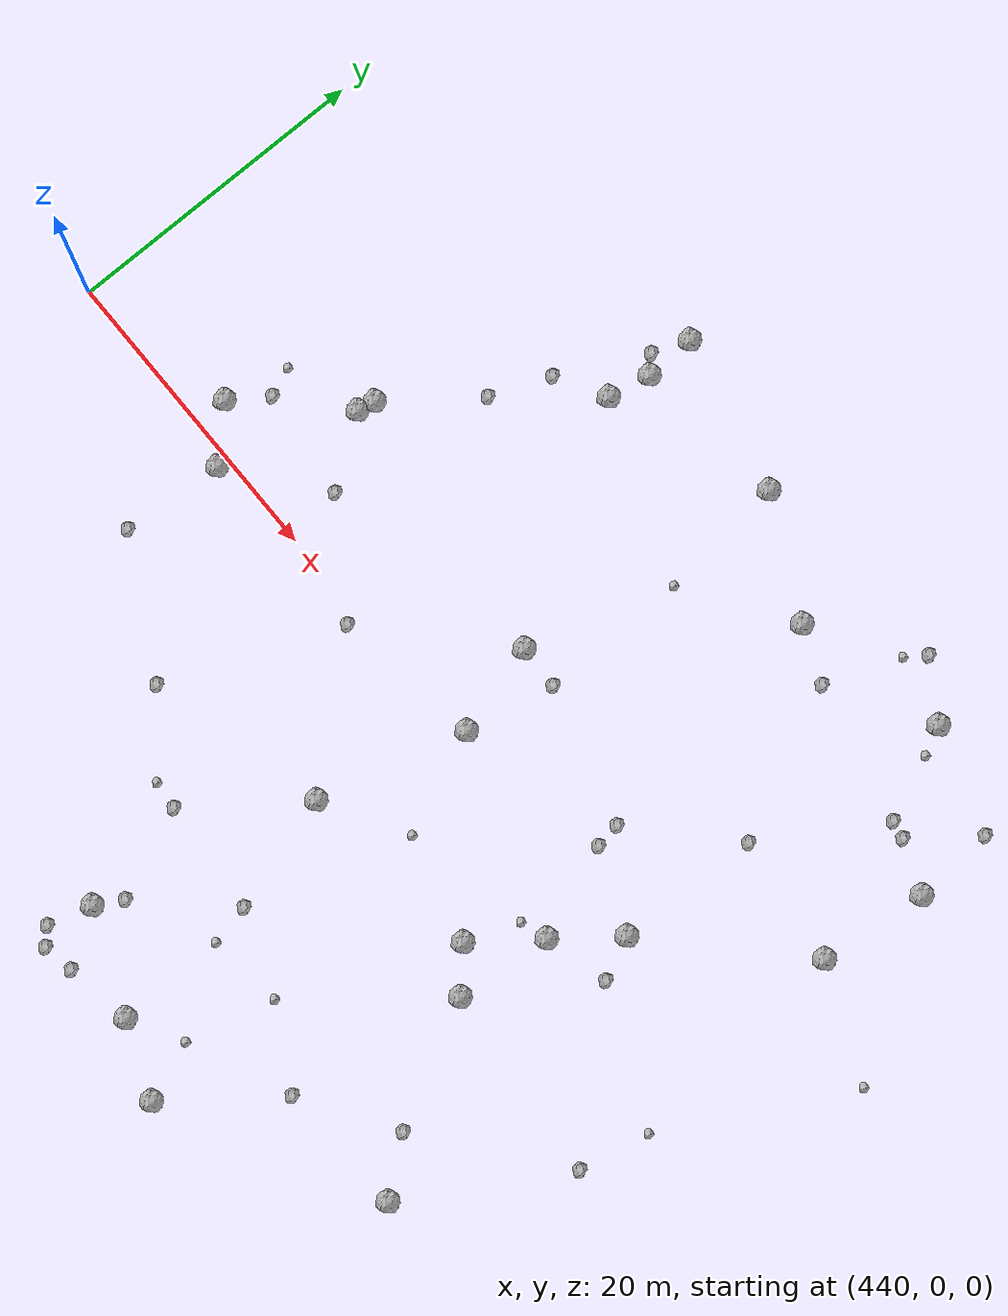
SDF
<sdf version="1.6">
 <world name="default">
  <include><uri>model://sun</uri></include>
  <model name="rock1_12_4">
   <include><uri>model://rock1</uri><pose>491.2710309723086 0.24305819605854495 0.5 0 0 0</pose></include>
  </model>
  <model name="rock1_12_5">
   <include><uri>model://rock1</uri><pose>453.51709940458977 -0.7547986006105631 0.5 0 0 0</pose></include>
  </model>
  <model name="rock1_12_6">
   <include><uri>model://rock1</uri><pose>475.6225715794143 0.6781473360761119 0.5 0 0 0</pose></include>
  </model>
  <model name="rock1_12_7">
   <include><uri>model://rock1</uri><pose>483.49291072089954 20.455454147170258 0.5 0 0 0</pose></include>
  </model>
  <model name="rock1_12_8">
   <include><uri>model://rock1</uri><pose>488.3290151289247 -3.5479842076528776 0.5 0 0 0</pose></include>
  </model>
  <model name="rock1_12_9">
   <include><uri>model://rock1</uri><pose>456.2597637947708 7.994733330778075 0.5 0 0 0</pose></include>
  </model>
  <model name="rock1_12_10">
   <include><uri>model://rock1</uri><pose>487.74785214270025 -9.74429305021209 0.5 0 0 0</pose></include>
  </model>
  <model name="rock1_12_11">
   <include><uri>model://rock1</uri><pose>450.6110279276857 2.155170345069827 0.5 0 0 0</pose></include>
  </model>
  <model name="rock1_12_12">
   <include><uri>model://rock1</uri><pose>480.8396970356005 -27.856419198678864 0.5 0 0 0</pose></include>
  </model>
  <model name="rock1_12_13">
   <include><uri>model://rock1</uri><pose>469.51174200745265 -23.30680877207542 0.5 0 0 0</pose></include>
  </model>
  <model name="rock1_12_14">
   <include><uri>model://rock1</uri><pose>475.93069121336765 24.168028833353212 0.5 0 0 0</pose></include>
  </model>
  <model name="rock1_12_15">
   <include><uri>model://rock1</uri><pose>465.8618281332851 23.103487611849403 0.5 0 0 0</pose></include>
  </model>
  <model name="rock1_12_16">
   <include><uri>model://rock1</uri><pose>499.83940389864233 8.483063975130236 0.5 0 0 0</pose></include>
  </model>
  <model name="rock1_12_17">
   <include><uri>model://rock1</uri><pose>456.46720767955134 9.141589469087194 0.5 0 0 0</pose></include>
  </model>
  <model name="rock1_12_18">
   <include><uri>model://rock1</uri><pose>476.0270586778907 -25.966179912042715 0.5 0 0 0</pose></include>
  </model>
  <model name="rock1_12_19">
   <include><uri>model://rock1</uri><pose>494.3755333701443 -20.74554015649348 0.5 0 0 0</pose></include>
  </model>
  <model name="rock1_12_20">
   <include><uri>model://rock1</uri><pose>465.3182193737519 20.32403846424002 0.5 0 0 0</pose></include>
  </model>
  <model name="rock1_12_21">
   <include><uri>model://rock1</uri><pose>500.6164756950902 15.442894781079701 0.5 0 0 0</pose></include>
  </model>
  <model name="rock1_12_22">
   <include><uri>model://rock1</uri><pose>493.42797750108707 22.828656780732587 0.5 0 0 0</pose></include>
  </model>
  <model name="rock1_12_23">
   <include><uri>model://rock1</uri><pose>473.12469425341334 -8.946864608048863 0.5 0 0 0</pose></include>
  </model>
  <model name="rock1_12_24">
   <include><uri>model://rock1</uri><pose>465.7570284750734 26.387934219148747 0.5 0 0 0</pose></include>
  </model>
  <model name="rock1_12_25">
   <include><uri>model://rock1</uri><pose>485.32104304024915 -7.554149223228933 0.5 0 0 0</pose></include>
  </model>
  <model name="rock1_12_26">
   <include><uri>model://rock1</uri><pose>473.98866811922414 6.527463215266408 0.5 0 0 0</pose></include>
  </model>
  <model name="rock2_12_0">
   <include><uri>model://rock2</uri><pose>468.6807620706095 -26.122184512861576 0.3 0 0 0</pose></include>
  </model>
  <model name="rock2_12_1">
   <include><uri>model://rock2</uri><pose>471.65239692092126 -26.67524151264836 0.3 0 0 0</pose></include>
  </model>
  <model name="rock2_12_2">
   <include><uri>model://rock2</uri><pose>500.27226034487904 20.723867677312548 0.3 0 0 0</pose></include>
  </model>
  <model name="rock2_12_3">
   <include><uri>model://rock2</uri><pose>452.1933427765387 4.5851571484767675 0.3 0 0 0</pose></include>
  </model>
  <model name="rock2_12_4">
   <include><uri>model://rock2</uri><pose>497.2561953541593 16.789428637527287 0.3 0 0 0</pose></include>
  </model>
  <model name="rock2_12_5">
   <include><uri>model://rock2</uri><pose>465.986508609767 -0.7550091295056269 0.3 0 0 0</pose></include>
  </model>
  <model name="rock2_12_6">
   <include><uri>model://rock2</uri><pose>500.15212749440275 -10.768406848052866 0.3 0 0 0</pose></include>
  </model>
  <model name="rock2_12_7">
   <include><uri>model://rock2</uri><pose>475.3204811319277 -16.348613278857684 0.3 0 0 0</pose></include>
  </model>
  <model name="rock2_12_8">
   <include><uri>model://rock2</uri><pose>492.4790810611061 -2.4090710653722347 0.3 0 0 0</pose></include>
  </model>
  <model name="rock2_12_9">
   <include><uri>model://rock2</uri><pose>485.73772164361793 4.040800087816713 0.3 0 0 0</pose></include>
  </model>
  <model name="rock2_12_10">
   <include><uri>model://rock2</uri><pose>462.09018339297177 18.541439852324736 0.3 0 0 0</pose></include>
  </model>
  <model name="rock2_12_11">
   <include><uri>model://rock2</uri><pose>461.51192540389417 -11.952995524056227 0.3 0 0 0</pose></include>
  </model>
  <model name="rock2_12_12">
   <include><uri>model://rock2</uri><pose>470.4402510408842 -21.539616134037455 0.3 0 0 0</pose></include>
  </model>
  <model name="rock2_12_13">
   <include><uri>model://rock2</uri><pose>491.57093399927044 9.476702187310373 0.3 0 0 0</pose></include>
  </model>
  <model name="rock2_12_14">
   <include><uri>model://rock2</uri><pose>453.00322987475386 -7.35848835007927 0.3 0 0 0</pose></include>
  </model>
  <model name="rock2_12_15">
   <include><uri>model://rock2</uri><pose>467.98942105794663 -15.83874435418064 0.3 0 0 0</pose></include>
  </model>
  <model name="rock2_12_16">
   <include><uri>model://rock2</uri><pose>459.24888690738385 3.7565582869876906 0.3 0 0 0</pose></include>
  </model>
  <model name="rock2_12_17">
   <include><uri>model://rock2</uri><pose>489.77470201846086 25.16964706481952 0.3 0 0 0</pose></include>
  </model>
  <model name="rock2_12_18">
   <include><uri>model://rock2</uri><pose>487.05417077353866 19.01956009727823 0.3 0 0 0</pose></include>
  </model>
  <model name="rock2_12_19">
   <include><uri>model://rock2</uri><pose>476.76853282995523 6.458492308890847 0.3 0 0 0</pose></include>
  </model>
  <model name="rock2_12_20">
   <include><uri>model://rock2</uri><pose>491.7331610578467 -17.449602989883672 0.3 0 0 0</pose></include>
  </model>
  <model name="rock2_12_21">
   <include><uri>model://rock2</uri><pose>460.571143043829 14.691783761680071 0.3 0 0 0</pose></include>
  </model>
  <model name="rock2_12_22">
   <include><uri>model://rock2</uri><pose>485.870222939048 -21.19657729174126 0.3 0 0 0</pose></include>
  </model>
  <model name="rock2_12_23">
   <include><uri>model://rock2</uri><pose>496.09287640149284 17.02595784308773 0.3 0 0 0</pose></include>
  </model>
  <model name="rock2_12_24">
   <include><uri>model://rock2</uri><pose>464.82921705878334 24.090257572213105 0.3 0 0 0</pose></include>
  </model>
  <model name="rock2_12_25">
   <include><uri>model://rock2</uri><pose>469.62229848811717 -27.009473296995072 0.3 0 0 0</pose></include>
  </model>
  <model name="rock2_12_26">
   <include><uri>model://rock2</uri><pose>485.9929367464934 2.402996050579702 0.3 0 0 0</pose></include>
  </model>
  <model name="rock3_12_0">
   <include><uri>model://rock3</uri><pose>494.30387114233446 21.0414169660296 0.2 0 0 0</pose></include>
  </model>
  <model name="rock3_12_1">
   <include><uri>model://rock3</uri><pose>475.87735513294405 -19.008850494141033 0.2 0 0 0</pose></include>
  </model>
  <model name="rock3_12_2">
   <include><uri>model://rock3</uri><pose>479.35193206754144 -24.126694004557436 0.2 0 0 0</pose></include>
  </model>
  <model name="rock3_12_3">
   <include><uri>model://rock3</uri><pose>501.0962060627727 -6.272254578127054 0.2 0 0 0</pose></include>
  </model>
  <model name="rock3_12_4">
   <include><uri>model://rock3</uri><pose>488.86512957753337 23.86743496467448 0.2 0 0 0</pose></include>
  </model>
  <model name="rock3_12_5">
   <include><uri>model://rock3</uri><pose>480.75311368175215 -18.43507604475825 0.2 0 0 0</pose></include>
  </model>
  <model name="rock3_12_6">
   <include><uri>model://rock3</uri><pose>476.7203614139298 15.957835657035403 0.2 0 0 0</pose></include>
  </model>
  <model name="rock3_12_7">
   <include><uri>model://rock3</uri><pose>451.4258192090443 6.372739597178445 0.2 0 0 0</pose></include>
  </model>
  <model name="rock3_12_8">
   <include><uri>model://rock3</uri><pose>478.37443635255937 -5.866216427506071 0.2 0 0 0</pose></include>
  </model>
  <model name="rock3_12_9">
   <include><uri>model://rock3</uri><pose>486.5435109445992 -4.12807720718358 0.2 0 0 0</pose></include>
  </model>
  <model name="rock3_12_10">
   <include><uri>model://rock3</uri><pose>507.1513317979634 5.378820261925426 0.2 0 0 0</pose></include>
  </model>
  <model name="rock3_12_11">
   <include><uri>model://rock3</uri><pose>456.3287056187128 8.511382249819349 0.2 0 0 0</pose></include>
  </model>
  <model name="rock3_12_12">
   <include><uri>model://rock3</uri><pose>466.1388666201992 -15.706675426639121 0.2 0 0 0</pose></include>
  </model>
  <model name="rock3_12_13">
   <include><uri>model://rock3</uri><pose>488.4867296653296 -3.6500832642377823 0.2 0 0 0</pose></include>
  </model>
 </world>
</sdf>
